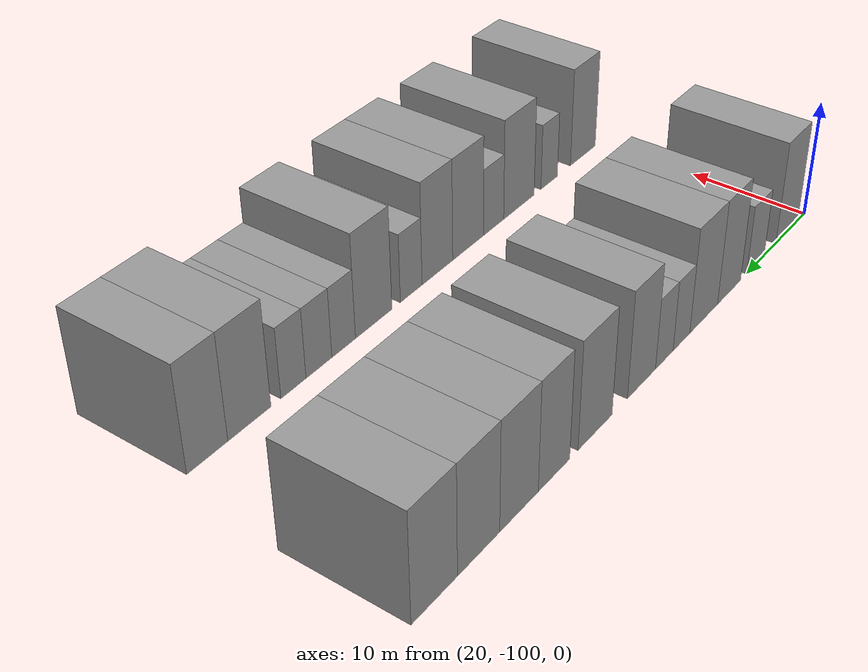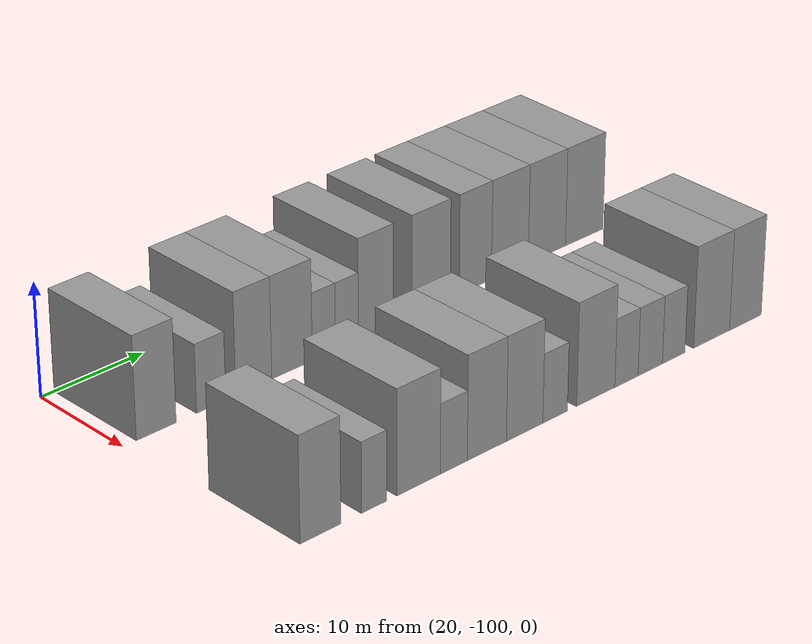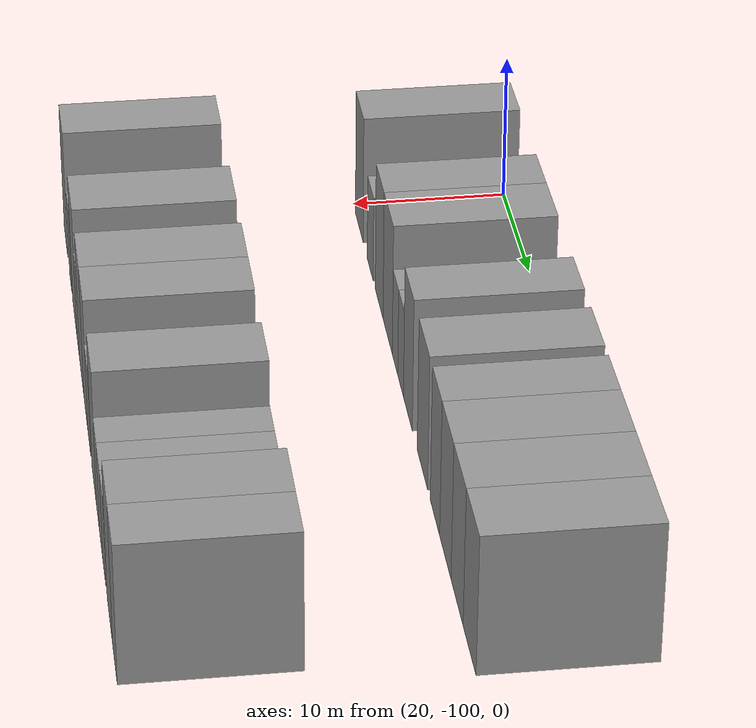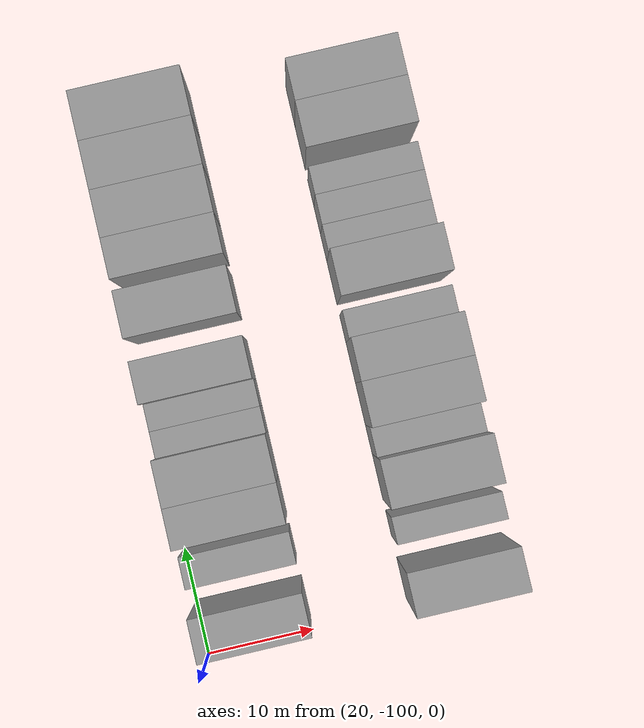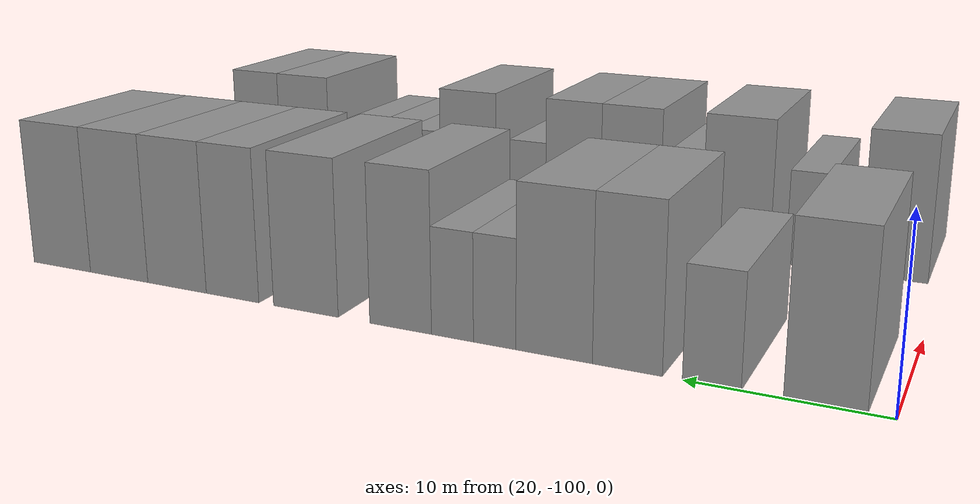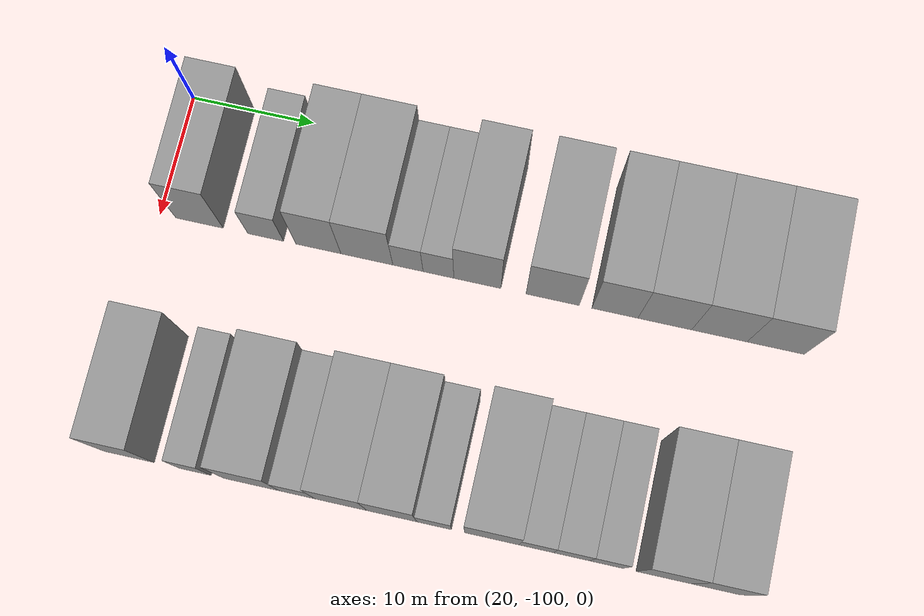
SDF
<sdf version="1.6">
 <world name="default">
  <model name="building_26">
   <static>1</static>
   <pose>25.0000 -96.7978 0 0.000000 0.000000 0.000000</pose>
   <link name="link">
    <pose>0 0 4.50 0 0 0</pose>
    <collision name="collision"><geometry><box><size>10.0000 3.8676 9.0000</size></box></geometry></collision>
    <visual name="visual">
     <cast_shadows>0</cast_shadows>
     <geometry><box><size>10.0000 3.8676 9.0000</size></box></geometry>
     <material>
      <script>
       <uri>model://grey_wall/materials/scripts</uri>
       <uri>model://grey_wall/materials/textures</uri>
       <name>vrc/grey_wall</name>
      </script>
     </material>
    </visual>
   </link>
  </model>
  <model name="building_27">
   <static>1</static>
   <pose>25.0000 -91.4139 0 0.000000 0.000000 0.000000</pose>
   <link name="link">
    <pose>0 0 3.00 0 0 0</pose>
    <collision name="collision"><geometry><box><size>10.0000 2.9003 6.0000</size></box></geometry></collision>
    <visual name="visual">
     <cast_shadows>0</cast_shadows>
     <geometry><box><size>10.0000 2.9003 6.0000</size></box></geometry>
     <material>
      <script>
       <uri>model://grey_wall/materials/scripts</uri>
       <uri>model://grey_wall/materials/textures</uri>
       <name>vrc/grey_wall</name>
      </script>
     </material>
    </visual>
   </link>
  </model>
  <model name="building_28">
   <static>1</static>
   <pose>25.0000 -87.1407 0 0.000000 0.000000 0.000000</pose>
   <link name="link">
    <pose>0 0 4.50 0 0 0</pose>
    <collision name="collision"><geometry><box><size>10.0000 3.6459 9.0000</size></box></geometry></collision>
    <visual name="visual">
     <cast_shadows>0</cast_shadows>
     <geometry><box><size>10.0000 3.6459 9.0000</size></box></geometry>
     <material>
      <script>
       <uri>model://grey_wall/materials/scripts</uri>
       <uri>model://grey_wall/materials/textures</uri>
       <name>vrc/grey_wall</name>
      </script>
     </material>
    </visual>
   </link>
  </model>
  <model name="building_29">
   <static>1</static>
   <pose>25.0000 -83.2249 0 0.000000 0.000000 0.000000</pose>
   <link name="link">
    <pose>0 0 4.50 0 0 0</pose>
    <collision name="collision"><geometry><box><size>10.0000 4.1856 9.0000</size></box></geometry></collision>
    <visual name="visual">
     <cast_shadows>0</cast_shadows>
     <geometry><box><size>10.0000 4.1856 9.0000</size></box></geometry>
     <material>
      <script>
       <uri>model://grey_wall/materials/scripts</uri>
       <uri>model://grey_wall/materials/textures</uri>
       <name>vrc/grey_wall</name>
      </script>
     </material>
    </visual>
   </link>
  </model>
  <model name="building_30">
   <static>1</static>
   <pose>25.0000 -79.9210 0 0.000000 0.000000 0.000000</pose>
   <link name="link">
    <pose>0 0 3.00 0 0 0</pose>
    <collision name="collision"><geometry><box><size>10.0000 2.4223 6.0000</size></box></geometry></collision>
    <visual name="visual">
     <cast_shadows>0</cast_shadows>
     <geometry><box><size>10.0000 2.4223 6.0000</size></box></geometry>
     <material>
      <script>
       <uri>model://grey_wall/materials/scripts</uri>
       <uri>model://grey_wall/materials/textures</uri>
       <name>vrc/grey_wall</name>
      </script>
     </material>
    </visual>
   </link>
  </model>
  <model name="building_31">
   <static>1</static>
   <pose>25.0000 -77.4762 0 0.000000 0.000000 0.000000</pose>
   <link name="link">
    <pose>0 0 3.00 0 0 0</pose>
    <collision name="collision"><geometry><box><size>10.0000 2.4674 6.0000</size></box></geometry></collision>
    <visual name="visual">
     <cast_shadows>0</cast_shadows>
     <geometry><box><size>10.0000 2.4674 6.0000</size></box></geometry>
     <material>
      <script>
       <uri>model://grey_wall/materials/scripts</uri>
       <uri>model://grey_wall/materials/textures</uri>
       <name>vrc/grey_wall</name>
      </script>
     </material>
    </visual>
   </link>
  </model>
  <model name="building_32">
   <static>1</static>
   <pose>25.0000 -74.3567 0 0.000000 0.000000 0.000000</pose>
   <link name="link">
    <pose>0 0 4.50 0 0 0</pose>
    <collision name="collision"><geometry><box><size>10.0000 3.7716 9.0000</size></box></geometry></collision>
    <visual name="visual">
     <cast_shadows>0</cast_shadows>
     <geometry><box><size>10.0000 3.7716 9.0000</size></box></geometry>
     <material>
      <script>
       <uri>model://grey_wall/materials/scripts</uri>
       <uri>model://grey_wall/materials/textures</uri>
       <name>vrc/grey_wall</name>
      </script>
     </material>
    </visual>
   </link>
  </model>
  <model name="building_33">
   <static>1</static>
   <pose>25.0000 -68.3508 0 0.000000 0.000000 0.000000</pose>
   <link name="link">
    <pose>0 0 4.50 0 0 0</pose>
    <collision name="collision"><geometry><box><size>10.0000 4.2402 9.0000</size></box></geometry></collision>
    <visual name="visual">
     <cast_shadows>0</cast_shadows>
     <geometry><box><size>10.0000 4.2402 9.0000</size></box></geometry>
     <material>
      <script>
       <uri>model://grey_wall/materials/scripts</uri>
       <uri>model://grey_wall/materials/textures</uri>
       <name>vrc/grey_wall</name>
      </script>
     </material>
    </visual>
   </link>
  </model>
  <model name="building_34">
   <static>1</static>
   <pose>25.0000 -63.4051 0 0.000000 0.000000 0.000000</pose>
   <link name="link">
    <pose>0 0 4.50 0 0 0</pose>
    <collision name="collision"><geometry><box><size>10.0000 3.6512 9.0000</size></box></geometry></collision>
    <visual name="visual">
     <cast_shadows>0</cast_shadows>
     <geometry><box><size>10.0000 3.6512 9.0000</size></box></geometry>
     <material>
      <script>
       <uri>model://grey_wall/materials/scripts</uri>
       <uri>model://grey_wall/materials/textures</uri>
       <name>vrc/grey_wall</name>
      </script>
     </material>
    </visual>
   </link>
  </model>
  <model name="building_35">
   <static>1</static>
   <pose>25.0000 -59.4551 0 0.000000 0.000000 0.000000</pose>
   <link name="link">
    <pose>0 0 4.50 0 0 0</pose>
    <collision name="collision"><geometry><box><size>10.0000 4.2489 9.0000</size></box></geometry></collision>
    <visual name="visual">
     <cast_shadows>0</cast_shadows>
     <geometry><box><size>10.0000 4.2489 9.0000</size></box></geometry>
     <material>
      <script>
       <uri>model://grey_wall/materials/scripts</uri>
       <uri>model://grey_wall/materials/textures</uri>
       <name>vrc/grey_wall</name>
      </script>
     </material>
    </visual>
   </link>
  </model>
  <model name="building_36">
   <static>1</static>
   <pose>25.0000 -55.1491 0 0.000000 0.000000 0.000000</pose>
   <link name="link">
    <pose>0 0 4.50 0 0 0</pose>
    <collision name="collision"><geometry><box><size>10.0000 4.3631 9.0000</size></box></geometry></collision>
    <visual name="visual">
     <cast_shadows>0</cast_shadows>
     <geometry><box><size>10.0000 4.3631 9.0000</size></box></geometry>
     <material>
      <script>
       <uri>model://grey_wall/materials/scripts</uri>
       <uri>model://grey_wall/materials/textures</uri>
       <name>vrc/grey_wall</name>
      </script>
     </material>
    </visual>
   </link>
  </model>
  <model name="building_37">
   <static>1</static>
   <pose>25.0000 -50.7211 0 0.000000 0.000000 0.000000</pose>
   <link name="link">
    <pose>0 0 4.50 0 0 0</pose>
    <collision name="collision"><geometry><box><size>10.0000 4.4929 9.0000</size></box></geometry></collision>
    <visual name="visual">
     <cast_shadows>0</cast_shadows>
     <geometry><box><size>10.0000 4.4929 9.0000</size></box></geometry>
     <material>
      <script>
       <uri>model://grey_wall/materials/scripts</uri>
       <uri>model://grey_wall/materials/textures</uri>
       <name>vrc/grey_wall</name>
      </script>
     </material>
    </visual>
   </link>
  </model>
  <model name="building_129">
   <static>1</static>
   <pose>44.0000 -97.2466 0 0.000000 0.000000 0.000000</pose>
   <link name="link">
    <pose>0 0 4.50 0 0 0</pose>
    <collision name="collision"><geometry><box><size>10.0000 3.9209 9.0000</size></box></geometry></collision>
    <visual name="visual">
     <cast_shadows>0</cast_shadows>
     <geometry><box><size>10.0000 3.9209 9.0000</size></box></geometry>
     <material>
      <script>
       <uri>model://grey_wall/materials/scripts</uri>
       <uri>model://grey_wall/materials/textures</uri>
       <name>vrc/grey_wall</name>
      </script>
     </material>
    </visual>
   </link>
  </model>
  <model name="building_130">
   <static>1</static>
   <pose>44.0000 -92.0510 0 0.000000 0.000000 0.000000</pose>
   <link name="link">
    <pose>0 0 3.00 0 0 0</pose>
    <collision name="collision"><geometry><box><size>10.0000 2.4704 6.0000</size></box></geometry></collision>
    <visual name="visual">
     <cast_shadows>0</cast_shadows>
     <geometry><box><size>10.0000 2.4704 6.0000</size></box></geometry>
     <material>
      <script>
       <uri>model://grey_wall/materials/scripts</uri>
       <uri>model://grey_wall/materials/textures</uri>
       <name>vrc/grey_wall</name>
      </script>
     </material>
    </visual>
   </link>
  </model>
  <model name="building_131">
   <static>1</static>
   <pose>44.0000 -87.6380 0 0.000000 0.000000 0.000000</pose>
   <link name="link">
    <pose>0 0 4.50 0 0 0</pose>
    <collision name="collision"><geometry><box><size>10.0000 4.3557 9.0000</size></box></geometry></collision>
    <visual name="visual">
     <cast_shadows>0</cast_shadows>
     <geometry><box><size>10.0000 4.3557 9.0000</size></box></geometry>
     <material>
      <script>
       <uri>model://grey_wall/materials/scripts</uri>
       <uri>model://grey_wall/materials/textures</uri>
       <name>vrc/grey_wall</name>
      </script>
     </material>
    </visual>
   </link>
  </model>
  <model name="building_132">
   <static>1</static>
   <pose>44.0000 -84.0771 0 0.000000 0.000000 0.000000</pose>
   <link name="link">
    <pose>0 0 3.00 0 0 0</pose>
    <collision name="collision"><geometry><box><size>10.0000 2.7660 6.0000</size></box></geometry></collision>
    <visual name="visual">
     <cast_shadows>0</cast_shadows>
     <geometry><box><size>10.0000 2.7660 6.0000</size></box></geometry>
     <material>
      <script>
       <uri>model://grey_wall/materials/scripts</uri>
       <uri>model://grey_wall/materials/textures</uri>
       <name>vrc/grey_wall</name>
      </script>
     </material>
    </visual>
   </link>
  </model>
  <model name="building_133">
   <static>1</static>
   <pose>44.0000 -80.6665 0 0.000000 0.000000 0.000000</pose>
   <link name="link">
    <pose>0 0 4.50 0 0 0</pose>
    <collision name="collision"><geometry><box><size>10.0000 4.0551 9.0000</size></box></geometry></collision>
    <visual name="visual">
     <cast_shadows>0</cast_shadows>
     <geometry><box><size>10.0000 4.0551 9.0000</size></box></geometry>
     <material>
      <script>
       <uri>model://grey_wall/materials/scripts</uri>
       <uri>model://grey_wall/materials/textures</uri>
       <name>vrc/grey_wall</name>
      </script>
     </material>
    </visual>
   </link>
  </model>
  <model name="building_134">
   <static>1</static>
   <pose>44.0000 -76.7045 0 0.000000 0.000000 0.000000</pose>
   <link name="link">
    <pose>0 0 4.50 0 0 0</pose>
    <collision name="collision"><geometry><box><size>10.0000 3.8689 9.0000</size></box></geometry></collision>
    <visual name="visual">
     <cast_shadows>0</cast_shadows>
     <geometry><box><size>10.0000 3.8689 9.0000</size></box></geometry>
     <material>
      <script>
       <uri>model://grey_wall/materials/scripts</uri>
       <uri>model://grey_wall/materials/textures</uri>
       <name>vrc/grey_wall</name>
      </script>
     </material>
    </visual>
   </link>
  </model>
  <model name="building_135">
   <static>1</static>
   <pose>44.0000 -73.4507 0 0.000000 0.000000 0.000000</pose>
   <link name="link">
    <pose>0 0 3.00 0 0 0</pose>
    <collision name="collision"><geometry><box><size>10.0000 2.6387 6.0000</size></box></geometry></collision>
    <visual name="visual">
     <cast_shadows>0</cast_shadows>
     <geometry><box><size>10.0000 2.6387 6.0000</size></box></geometry>
     <material>
      <script>
       <uri>model://grey_wall/materials/scripts</uri>
       <uri>model://grey_wall/materials/textures</uri>
       <name>vrc/grey_wall</name>
      </script>
     </material>
    </visual>
   </link>
  </model>
  <model name="building_136">
   <static>1</static>
   <pose>44.0000 -69.0343 0 0.000000 0.000000 0.000000</pose>
   <link name="link">
    <pose>0 0 4.50 0 0 0</pose>
    <collision name="collision"><geometry><box><size>10.0000 4.1941 9.0000</size></box></geometry></collision>
    <visual name="visual">
     <cast_shadows>0</cast_shadows>
     <geometry><box><size>10.0000 4.1941 9.0000</size></box></geometry>
     <material>
      <script>
       <uri>model://grey_wall/materials/scripts</uri>
       <uri>model://grey_wall/materials/textures</uri>
       <name>vrc/grey_wall</name>
      </script>
     </material>
    </visual>
   </link>
  </model>
  <model name="building_137">
   <static>1</static>
   <pose>44.0000 -65.6359 0 0.000000 0.000000 0.000000</pose>
   <link name="link">
    <pose>0 0 3.00 0 0 0</pose>
    <collision name="collision"><geometry><box><size>10.0000 2.6028 6.0000</size></box></geometry></collision>
    <visual name="visual">
     <cast_shadows>0</cast_shadows>
     <geometry><box><size>10.0000 2.6028 6.0000</size></box></geometry>
     <material>
      <script>
       <uri>model://grey_wall/materials/scripts</uri>
       <uri>model://grey_wall/materials/textures</uri>
       <name>vrc/grey_wall</name>
      </script>
     </material>
    </visual>
   </link>
  </model>
  <model name="building_138">
   <static>1</static>
   <pose>44.0000 -62.9575 0 0.000000 0.000000 0.000000</pose>
   <link name="link">
    <pose>0 0 3.00 0 0 0</pose>
    <collision name="collision"><geometry><box><size>10.0000 2.7540 6.0000</size></box></geometry></collision>
    <visual name="visual">
     <cast_shadows>0</cast_shadows>
     <geometry><box><size>10.0000 2.7540 6.0000</size></box></geometry>
     <material>
      <script>
       <uri>model://grey_wall/materials/scripts</uri>
       <uri>model://grey_wall/materials/textures</uri>
       <name>vrc/grey_wall</name>
      </script>
     </material>
    </visual>
   </link>
  </model>
  <model name="building_139">
   <static>1</static>
   <pose>44.0000 -60.2857 0 0.000000 0.000000 0.000000</pose>
   <link name="link">
    <pose>0 0 3.00 0 0 0</pose>
    <collision name="collision"><geometry><box><size>10.0000 2.5895 6.0000</size></box></geometry></collision>
    <visual name="visual">
     <cast_shadows>0</cast_shadows>
     <geometry><box><size>10.0000 2.5895 6.0000</size></box></geometry>
     <material>
      <script>
       <uri>model://grey_wall/materials/scripts</uri>
       <uri>model://grey_wall/materials/textures</uri>
       <name>vrc/grey_wall</name>
      </script>
     </material>
    </visual>
   </link>
  </model>
  <model name="building_140">
   <static>1</static>
   <pose>44.0000 -55.8949 0 0.000000 0.000000 0.000000</pose>
   <link name="link">
    <pose>0 0 4.50 0 0 0</pose>
    <collision name="collision"><geometry><box><size>10.0000 4.1921 9.0000</size></box></geometry></collision>
    <visual name="visual">
     <cast_shadows>0</cast_shadows>
     <geometry><box><size>10.0000 4.1921 9.0000</size></box></geometry>
     <material>
      <script>
       <uri>model://grey_wall/materials/scripts</uri>
       <uri>model://grey_wall/materials/textures</uri>
       <name>vrc/grey_wall</name>
      </script>
     </material>
    </visual>
   </link>
  </model>
  <model name="building_141">
   <static>1</static>
   <pose>44.0000 -51.9000 0 0.000000 0.000000 0.000000</pose>
   <link name="link">
    <pose>0 0 4.50 0 0 0</pose>
    <collision name="collision"><geometry><box><size>10.0000 3.7979 9.0000</size></box></geometry></collision>
    <visual name="visual">
     <cast_shadows>0</cast_shadows>
     <geometry><box><size>10.0000 3.7979 9.0000</size></box></geometry>
     <material>
      <script>
       <uri>model://grey_wall/materials/scripts</uri>
       <uri>model://grey_wall/materials/textures</uri>
       <name>vrc/grey_wall</name>
      </script>
     </material>
    </visual>
   </link>
  </model>
 </world>
</sdf>
